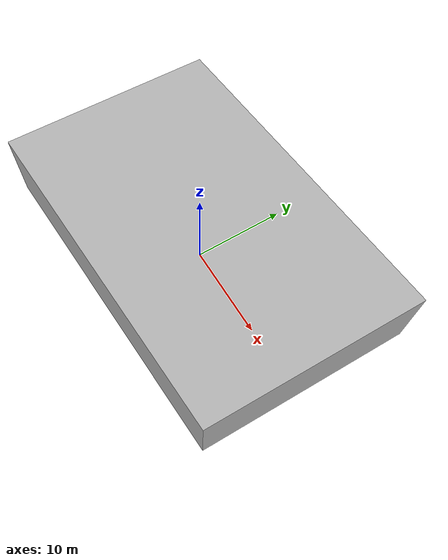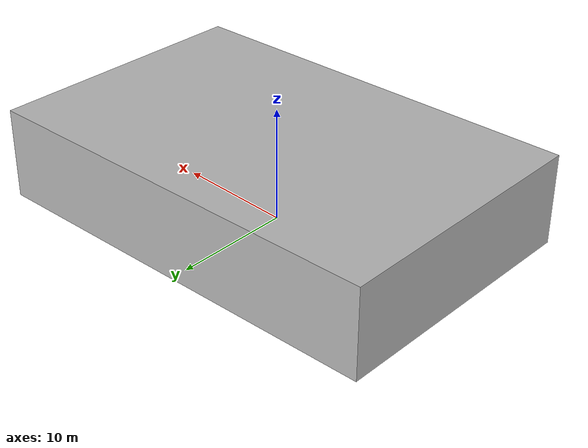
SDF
<?xml version="1.0" ?>
<sdf version="1.7">
  <world name="one_building_1373_empty">
    <gravity>0 0 -9.8</gravity>
    <magnetic_field>6e-06 2.3e-05 -4.2e-05</magnetic_field>
    <atmosphere type="adiabatic"/>
    <scene>
      <ambient>0.65 0.65 0.65 1</ambient>
      <background>0.7 0.82 1 1</background>
      <shadows>false</shadows>
    </scene>
    <light name="sun" type="directional">
      <cast_shadows>false</cast_shadows>
      <pose>0 0 1000 0 0 0</pose>
      <diffuse>0.8 0.8 0.8 1</diffuse>
      <specular>0.2 0.2 0.2 1</specular>
      <direction>-0.5 0.2 -1</direction>
    </light>
    <include>
      <name>building_1373_actual_a_casa</name>
      <uri>model://building_1373_actual_a_casa</uri>
      <pose>0 0 0 0 0 0</pose>
    </include>
  </world>
</sdf>

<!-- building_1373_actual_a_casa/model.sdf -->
<sdf version="1.7">
  <model name="building_1373_actual_a_casa">
    <static>true</static>
    <link name="building_link">
      <visual name="building_visual">
        <geometry>
          <mesh>
            <uri>model://building_1373_actual_a_casa/meshes/construction_1373_actual_A_Casa_h8m.obj</uri>
          </mesh>
        </geometry>
      </visual>
    <collision name="building_collision">
      <geometry>
        <mesh>
          <uri>model://building_1373_actual_a_casa/meshes/construction_1373_actual_A_Casa_h8m.obj</uri>
        </mesh>
      </geometry>
    </collision>
    </link>
  </model>
</sdf>
